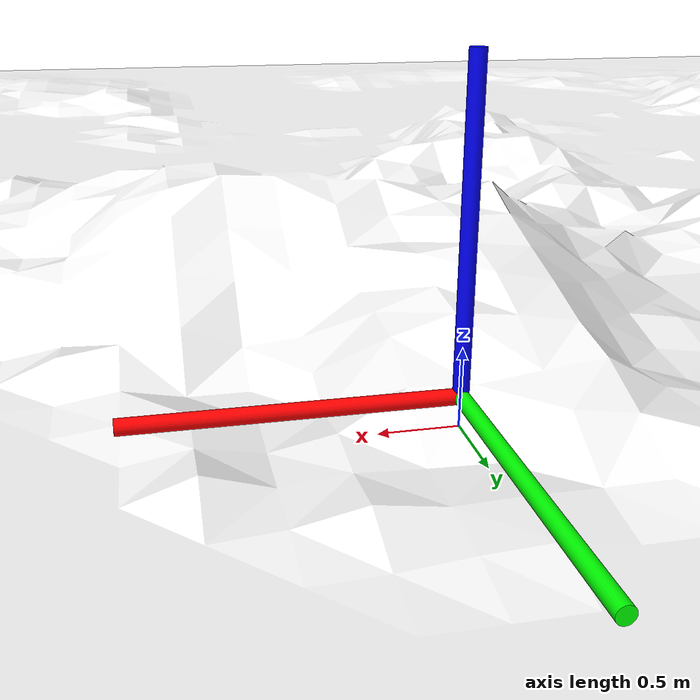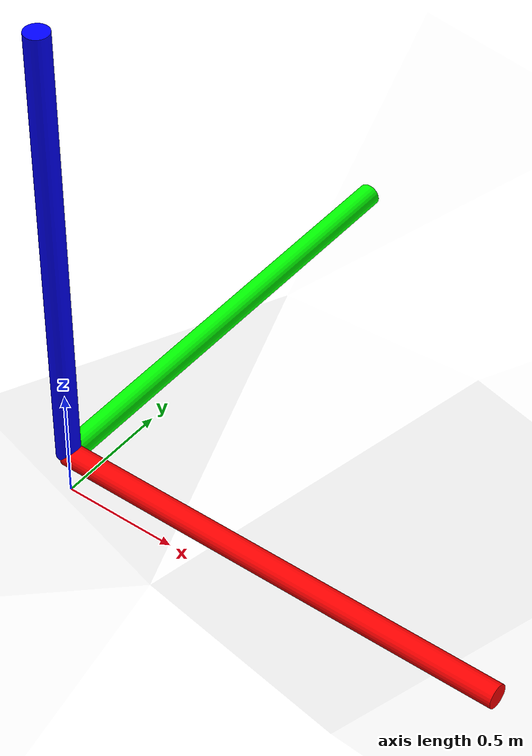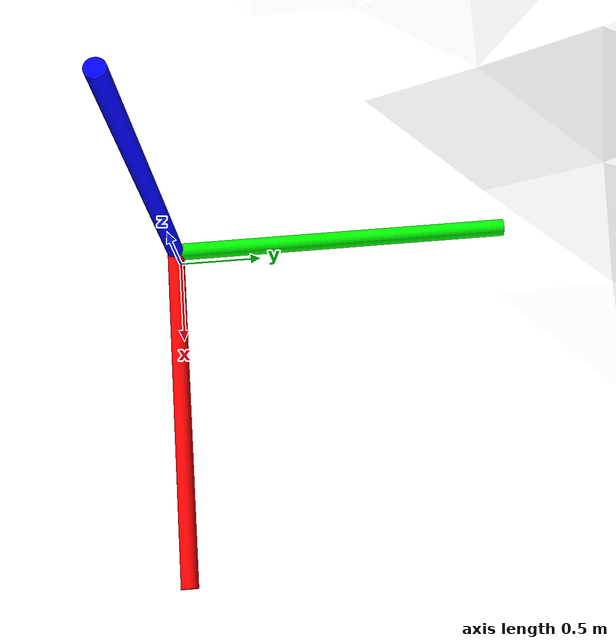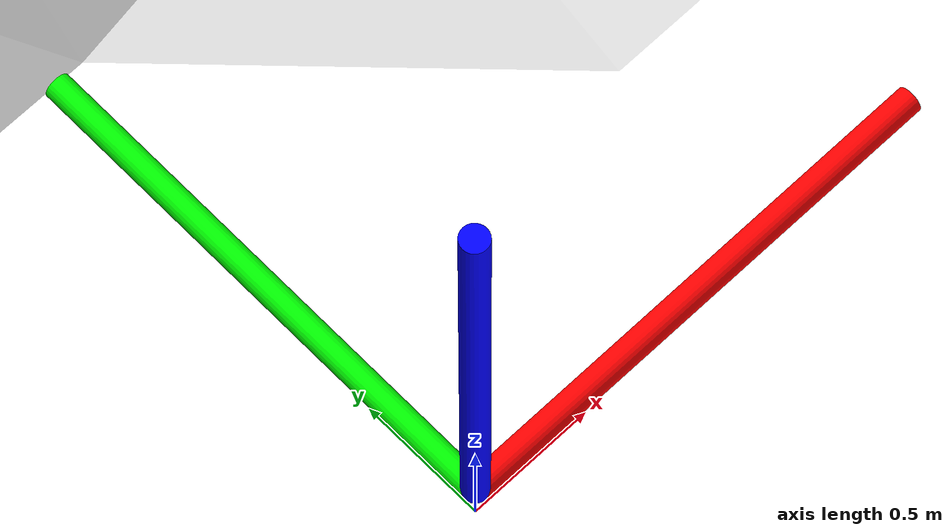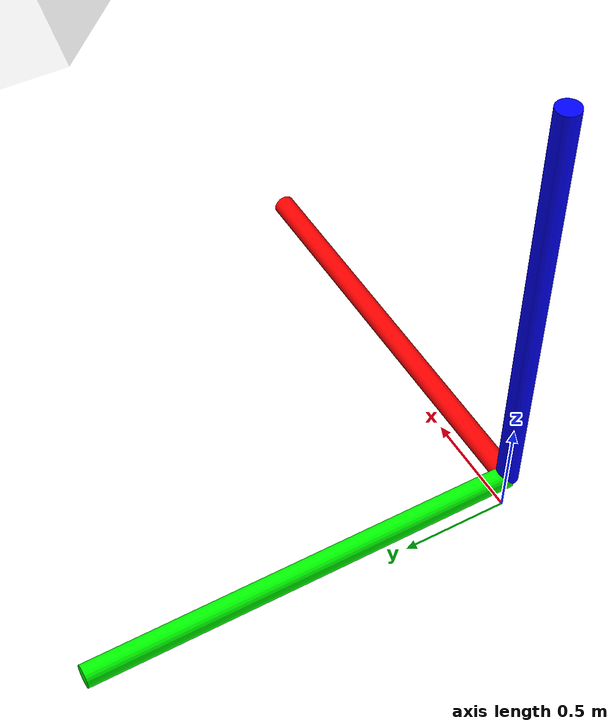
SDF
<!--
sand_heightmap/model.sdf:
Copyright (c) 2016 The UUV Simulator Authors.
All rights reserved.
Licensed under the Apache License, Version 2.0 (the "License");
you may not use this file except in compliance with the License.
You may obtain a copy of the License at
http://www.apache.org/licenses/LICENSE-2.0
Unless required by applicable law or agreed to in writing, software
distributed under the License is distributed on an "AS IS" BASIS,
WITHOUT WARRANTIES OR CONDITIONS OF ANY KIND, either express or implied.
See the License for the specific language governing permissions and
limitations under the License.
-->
<sdf version="1.6">
 <world name="sand">
  <plugin filename="gz-sim-physics-system" name="gz::sim::systems::Physics"/>
  <plugin filename="gz-sim-user-commands-system" name="gz::sim::systems::UserCommands"/>
  <plugin filename="gz-sim-scene-broadcaster-system" name="gz::sim::systems::SceneBroadcaster"/>
  <plugin filename="gz-sim-sensors-system" name="gz::sim::systems::Sensors"/>
  <plugin filename="libgz-sim-imu-system.so" name="gz::sim::systems::Imu"/>
  <plugin filename="libgz-sim-dvl-system.so" name="gz::sim::systems::DopplerVelocityLogSystem"/>
  <plugin filename="gz-sim-buoyancy-system" name="gz::sim::systems::Buoyancy">
   <graded_buoyancy>
    <default_density>1000</default_density>
    <density_change><above_depth>0</above_depth><density>1</density></density_change>
   </graded_buoyancy>
   <enable>orca4</enable>
  </plugin>
  <include><uri>https://fuel.gazebosim.org/1.0/OpenRobotics/models/Sun</uri></include>
  <include><uri>model://sand_heightmap</uri><pose>0 7 -10 0 0 0</pose></include>
  <include><uri>model://axes</uri><pose>0 0 0.2 0 0 0</pose></include>
 </world>
</sdf>

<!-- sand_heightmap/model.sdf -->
<sdf version="1.5">
  <model name="sand_heightmap">
    <static>true</static>
    <link name="link">
      <collision name="ground">
        <pose>0 0 0 0 0 0</pose>
        <geometry>
          <mesh>
            <scale>0.5 0.5 0.25</scale>
            <uri>model://sand_heightmap/meshes/sandseabed.dae</uri>
          </mesh>
        </geometry>
      </collision>
      <visual name="ground_sand">
        <cast_shadows>true</cast_shadows>
        <pose>0 0 0 0 0 0</pose>
        <geometry>
          <mesh>
            <scale>0.5 0.5 0.25</scale>
            <uri>model://sand_heightmap/meshes/sandseabed.dae</uri>
          </mesh>
        </geometry>
        <material>
          <ambient>1 1 1 1</ambient>
          <diffuse>1 1 1 1</diffuse>
          <specular>0.1 0.1 0.1 0.1</specular>
          <pbr>
            <metal>
              <albedo_map>materials/soil_sand_0045_01.jpg</albedo_map>
              <normal_map>materials/flat_normal.png</normal_map>
              <roughness>0.9</roughness>
              <metalness>0.01</metalness>
            </metal>
          </pbr>
        </material>
      </visual>
    </link>
  </model>
</sdf>

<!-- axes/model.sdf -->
<sdf version='1.6'>
  <model name='axes'>
    <static>true</static>
    <pose>0 0 0 0 0 0</pose>

    <link name="x_axis">
      <visual name="x_visual">
        <pose degrees="true">1 0 0 90 0 90</pose>
        <geometry>
          <cylinder>
            <radius>0.05</radius>
            <length>2</length>
          </cylinder>
        </geometry>
        <material>
          <ambient>1 0 0 1</ambient>
          <diffuse>1 0 0 1</diffuse>
          <specular>1 0 0 1</specular>
        </material>
      </visual>
    </link>

    <link name="y_axis">
      <visual name="y_visual">
        <pose degrees="true">0 1 0 0 90 90</pose>
        <geometry>
          <cylinder>
            <radius>0.05</radius>
            <length>2</length>
          </cylinder>
        </geometry>
        <material>
          <ambient>0 1 0 1</ambient>
          <diffuse>0 1 0 1</diffuse>
          <specular>0 1 0 1</specular>
        </material>
      </visual>
    </link>

    <link name="z_axis">
      <visual name="z_visual">
        <pose degrees="true">0 0 1 0 0 0</pose>
        <geometry>
          <cylinder>
            <radius>0.05</radius>
            <length>2</length>
          </cylinder>
        </geometry>
        <material>
          <ambient>0 0 1 1</ambient>
          <diffuse>0 0 1 1</diffuse>
          <specular>0 0 1 1</specular>
        </material>
      </visual>
    </link>

  </model>
</sdf>
